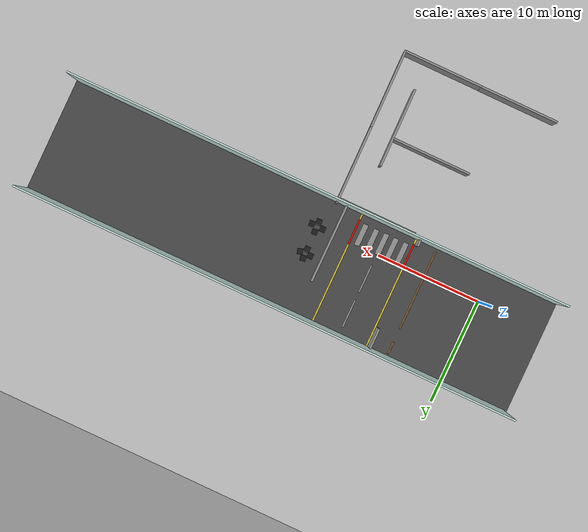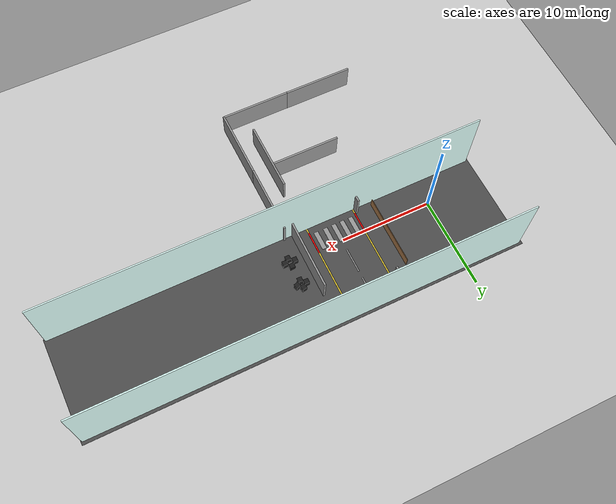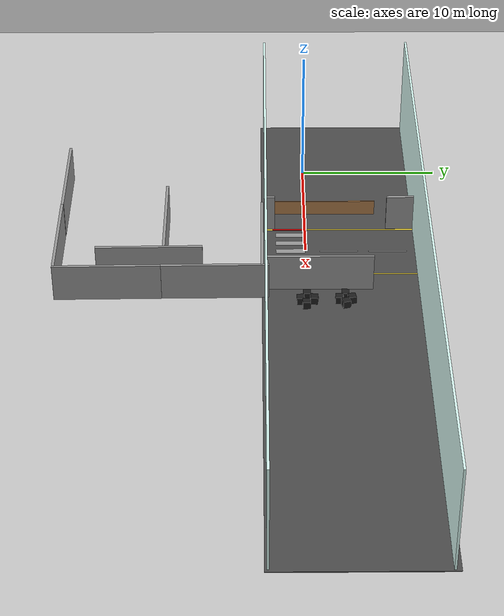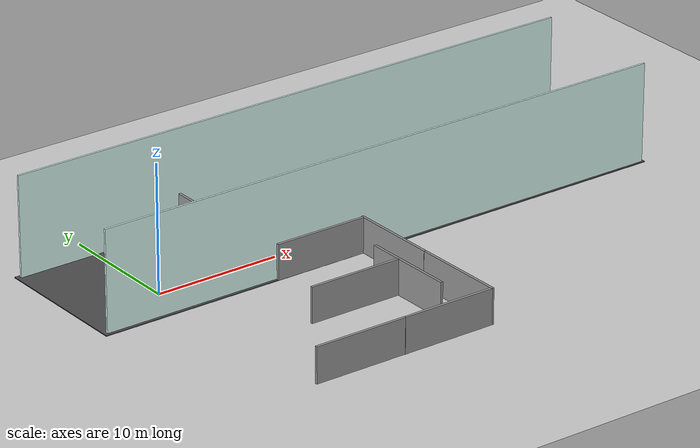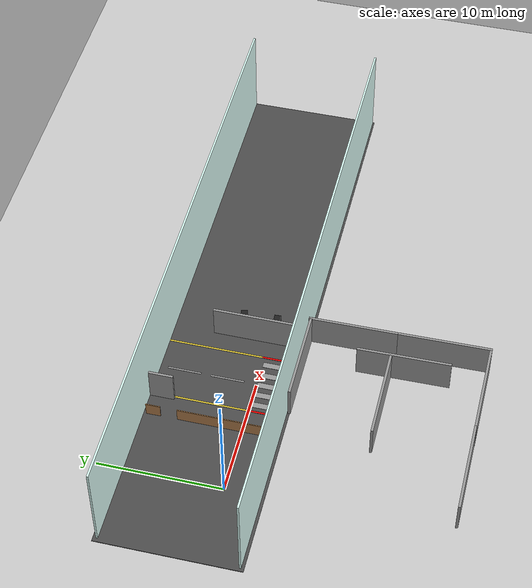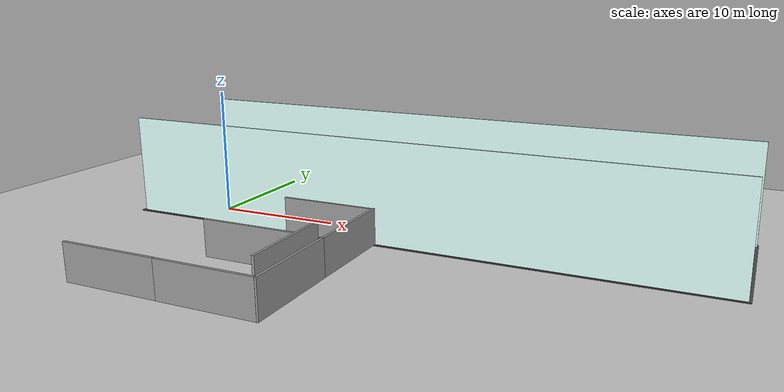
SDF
<sdf version="1.6">
 <world name="default">
  <model name="grey_wall_1">
   <static>1</static>
   <link name="link">
    <pose>0 0 1.4 0 -0 0</pose>
    <collision name="collision"><geometry><box><size>7.5 0.2 2.8</size></box></geometry></collision>
    <visual name="visual">
     <cast_shadows>0</cast_shadows>
     <geometry><box><size>7.5 0.2 2.8</size></box></geometry>
     <material>
      <script>
       <uri>model://grey_wall/materials/scripts</uri>
       <uri>model://grey_wall/materials/textures</uri>
       <name>vrc/grey_wall</name>
      </script>
     </material>
    </visual>
   </link>
   <pose>14.5585 0.893344 0 0 -0 1.56876</pose>
  </model>
  <model name="asphalt_plane_new">
   <link name="link">
    <inertial>
     <mass>1</mass>
     <inertia><ixx>1</ixx><ixy>0</ixy><ixz>0</ixz><iyy>1</iyy><iyz>0</iyz><izz>1</izz></inertia>
    </inertial>
    <visual name="visual">
     <cast_shadows>0</cast_shadows>
     <geometry><box><size>48.1726 11.4674 0.5486</size></box></geometry>
     <material>
      <script>
       <uri>model://asphalt_plane/materials/scripts</uri>
       <uri>model://asphalt_plane/materials/textures</uri>
       <name>vrc/asphalt</name>
      </script>
      <shader type="pixel"><normal_map>__default__</normal_map></shader>
      <ambient>0.5 0.5 0.5 1</ambient>
      <diffuse>0.5 0.5 0.5 1</diffuse>
      <specular>0.2 0.2 0.2 1</specular>
      <emissive>0 0 0 1</emissive>
     </material>
    </visual>
   </link>
   <static>1</static>
   <pose>17.4989 2.59063 -0.264849 0 -0 0.00191</pose>
  </model>
  <model name="grey_wall_clone_0">
   <link name="link">
    <pose>2.90621 0.028382 1.4 0 -0 0</pose>
    <inertial>
     <mass>1</mass>
     <inertia><ixx>1</ixx><ixy>0</ixy><ixz>0</ixz><iyy>1</iyy><iyz>0</iyz><izz>1</izz></inertia>
    </inertial>
    <visual name="visual">
     <cast_shadows>0</cast_shadows>
     <geometry><box><size>2 0.2 2.8</size></box></geometry>
     <material>
      <script>
       <uri>model://grey_wall/materials/scripts</uri>
       <uri>model://grey_wall/materials/textures</uri>
       <name>vrc/grey_wall</name>
      </script>
      <shader type="pixel"><normal_map>__default__</normal_map></shader>
      <ambient>1 1 1 1</ambient>
      <diffuse>1 1 1 1</diffuse>
      <specular>0 0 0 1</specular>
      <emissive>0 0 0 1</emissive>
     </material>
    </visual>
    <collision name="collision">
     <geometry><box><size>2 0.2 2.8</size></box></geometry>
     <surface>
      <friction>
       <ode><mu>1</mu><mu2>1</mu2><fdir1>0 0 0</fdir1><slip1>0</slip1><slip2>0</slip2></ode>
       <torsional>
        <coefficient>1</coefficient>
        <patch_radius>0</patch_radius>
        <surface_radius>0</surface_radius>
        <use_patch_radius>1</use_patch_radius>
        <ode><slip>0</slip></ode>
       </torsional>
      </friction>
      <bounce><restitution_coefficient>0</restitution_coefficient><threshold>1e+06</threshold></bounce>
      <contact>
       <collide_without_contact>0</collide_without_contact>
       <collide_without_contact_bitmask>1</collide_without_contact_bitmask>
       <collide_bitmask>1</collide_bitmask>
       <ode>
        <soft_cfm>0</soft_cfm>
        <soft_erp>0.2</soft_erp>
        <kp>1e+13</kp>
        <kd>1</kd>
        <max_vel>0.01</max_vel>
        <min_depth>0</min_depth>
       </ode>
       <bullet>
        <split_impulse>1</split_impulse>
        <split_impulse_penetration_threshold>-0.01</split_impulse_penetration_threshold>
        <soft_cfm>0</soft_cfm>
        <soft_erp>0.2</soft_erp>
        <kp>1e+13</kp>
        <kd>1</kd>
       </bullet>
      </contact>
     </surface>
    </collision>
   </link>
   <static>1</static>
   <pose>7.26761 9.82843 0 0 0 -1.57</pose>
  </model>
  <model name="grey_wall_clone_0_clone_1">
   <link name="link">
    <pose>0 0 1.4 0 -0 0</pose>
    <inertial>
     <mass>1</mass>
     <inertia><ixx>1</ixx><ixy>0</ixy><ixz>0</ixz><iyy>1</iyy><iyz>0</iyz><izz>1</izz></inertia>
    </inertial>
    <visual name="visual">
     <cast_shadows>0</cast_shadows>
     <geometry><box><size>0.75 0.2 2.8</size></box></geometry>
     <material>
      <script>
       <uri>model://grey_wall/materials/scripts</uri>
       <uri>model://grey_wall/materials/textures</uri>
       <name>vrc/grey_wall</name>
      </script>
      <shader type="pixel"><normal_map>__default__</normal_map></shader>
      <ambient>1 1 1 1</ambient>
      <diffuse>1 1 1 1</diffuse>
      <specular>0 0 0 1</specular>
      <emissive>0 0 0 1</emissive>
     </material>
    </visual>
    <collision name="collision">
     <geometry><box><size>0.75 0.2 2.8</size></box></geometry>
     <surface>
      <friction>
       <ode><mu>1</mu><mu2>1</mu2><fdir1>0 0 0</fdir1><slip1>0</slip1><slip2>0</slip2></ode>
       <torsional>
        <coefficient>1</coefficient>
        <patch_radius>0</patch_radius>
        <surface_radius>0</surface_radius>
        <use_patch_radius>1</use_patch_radius>
        <ode><slip>0</slip></ode>
       </torsional>
      </friction>
      <bounce><restitution_coefficient>0</restitution_coefficient><threshold>1e+06</threshold></bounce>
      <contact>
       <collide_without_contact>0</collide_without_contact>
       <collide_without_contact_bitmask>1</collide_without_contact_bitmask>
       <collide_bitmask>1</collide_bitmask>
       <ode>
        <soft_cfm>0</soft_cfm>
        <soft_erp>0.2</soft_erp>
        <kp>1e+13</kp>
        <kd>1</kd>
        <max_vel>0.01</max_vel>
        <min_depth>0</min_depth>
       </ode>
       <bullet>
        <split_impulse>1</split_impulse>
        <split_impulse_penetration_threshold>-0.01</split_impulse_penetration_threshold>
        <soft_cfm>0</soft_cfm>
        <soft_erp>0.2</soft_erp>
        <kp>1e+13</kp>
        <kd>1</kd>
       </bullet>
      </contact>
     </surface>
    </collision>
   </link>
   <static>1</static>
   <pose>7.30492 -2.5737 0 0 0 -1.54624</pose>
  </model>
  <model name="unit_box_0_clone_22_clone_15">
   <link name="link">
    <inertial>
     <mass>1</mass>
     <inertia>
      <ixx>0.166667</ixx>
      <ixy>0</ixy>
      <ixz>0</ixz>
      <iyy>0.166667</iyy>
      <iyz>0</iyz>
      <izz>0.166667</izz>
     </inertia>
    </inertial>
    <visual name="visual">
     <geometry><box><size>0.530101 0.530101 0.530101</size></box></geometry>
     <material>
      <script><name>Gazebo/FlatBlack</name><uri>file://media/materials/scripts/gazebo.material</uri></script>
      <shader type="pixel"><normal_map>__default__</normal_map></shader>
      <ambient>0.1 0.1 0.1 1</ambient>
      <diffuse>0.1 0.1 0.1 1</diffuse>
      <specular>0.01 0.01 0.01 1</specular>
      <emissive>0 0 0 1</emissive>
     </material>
    </visual>
    <collision name="collision">
     <geometry><box><size>0.530101 0.530101 0.530101</size></box></geometry>
     <surface>
      <friction>
       <ode><mu>1</mu><mu2>1</mu2><fdir1>0 0 0</fdir1><slip1>0</slip1><slip2>0</slip2></ode>
       <torsional>
        <coefficient>1</coefficient>
        <patch_radius>0</patch_radius>
        <surface_radius>0</surface_radius>
        <use_patch_radius>1</use_patch_radius>
        <ode><slip>0</slip></ode>
       </torsional>
      </friction>
      <bounce><restitution_coefficient>0</restitution_coefficient><threshold>1e+06</threshold></bounce>
      <contact>
       <collide_without_contact>0</collide_without_contact>
       <collide_without_contact_bitmask>1</collide_without_contact_bitmask>
       <collide_bitmask>1</collide_bitmask>
       <ode>
        <soft_cfm>0</soft_cfm>
        <soft_erp>0.2</soft_erp>
        <kp>1e+13</kp>
        <kd>1</kd>
        <max_vel>0.01</max_vel>
        <min_depth>0</min_depth>
       </ode>
       <bullet>
        <split_impulse>1</split_impulse>
        <split_impulse_penetration_threshold>-0.01</split_impulse_penetration_threshold>
        <soft_cfm>0</soft_cfm>
        <soft_erp>0.2</soft_erp>
        <kp>1e+13</kp>
        <kd>1</kd>
       </bullet>
      </contact>
     </surface>
    </collision>
   </link>
   <static>0</static>
   <pose>16.1133 2.22965 0.29182 1.67037 0.006566 -0.065671</pose>
  </model>
  <model name="unit_box_0_clone_22_clone_15_clone">
   <link name="link">
    <inertial>
     <mass>1</mass>
     <inertia>
      <ixx>0.166667</ixx>
      <ixy>0</ixy>
      <ixz>0</ixz>
      <iyy>0.166667</iyy>
      <iyz>0</iyz>
      <izz>0.166667</izz>
     </inertia>
    </inertial>
    <visual name="visual">
     <geometry><box><size>0.530101 0.530101 0.530101</size></box></geometry>
     <material>
      <script><name>Gazebo/FlatBlack</name><uri>file://media/materials/scripts/gazebo.material</uri></script>
      <shader type="pixel"><normal_map>__default__</normal_map></shader>
      <ambient>0.1 0.1 0.1 1</ambient>
      <diffuse>0.1 0.1 0.1 1</diffuse>
      <specular>0.01 0.01 0.01 1</specular>
      <emissive>0 0 0 1</emissive>
     </material>
    </visual>
    <collision name="collision">
     <geometry><box><size>0.530101 0.530101 0.530101</size></box></geometry>
     <surface>
      <friction>
       <ode><mu>1</mu><mu2>1</mu2><fdir1>0 0 0</fdir1><slip1>0</slip1><slip2>0</slip2></ode>
       <torsional>
        <coefficient>1</coefficient>
        <patch_radius>0</patch_radius>
        <surface_radius>0</surface_radius>
        <use_patch_radius>1</use_patch_radius>
        <ode><slip>0</slip></ode>
       </torsional>
      </friction>
      <bounce><restitution_coefficient>0</restitution_coefficient><threshold>1e+06</threshold></bounce>
      <contact>
       <collide_without_contact>0</collide_without_contact>
       <collide_without_contact_bitmask>1</collide_without_contact_bitmask>
       <collide_bitmask>1</collide_bitmask>
       <ode>
        <soft_cfm>0</soft_cfm>
        <soft_erp>0.2</soft_erp>
        <kp>1e+13</kp>
        <kd>1</kd>
        <max_vel>0.01</max_vel>
        <min_depth>0</min_depth>
       </ode>
       <bullet>
        <split_impulse>1</split_impulse>
        <split_impulse_penetration_threshold>-0.01</split_impulse_penetration_threshold>
        <soft_cfm>0</soft_cfm>
        <soft_erp>0.2</soft_erp>
        <kp>1e+13</kp>
        <kd>1</kd>
       </bullet>
      </contact>
     </surface>
    </collision>
   </link>
   <static>0</static>
   <pose>16.6207 2.65895 0.311068 -0.00533 -0.017542 0.297121</pose>
  </model>
  <model name="unit_box_0_clone_22_clone_15_clone_0">
   <link name="link">
    <inertial>
     <mass>1</mass>
     <inertia>
      <ixx>0.166667</ixx>
      <ixy>0</ixy>
      <ixz>0</ixz>
      <iyy>0.166667</iyy>
      <iyz>0</iyz>
      <izz>0.166667</izz>
     </inertia>
    </inertial>
    <visual name="visual">
     <geometry><box><size>0.530101 0.530101 0.530101</size></box></geometry>
     <material>
      <script><name>Gazebo/FlatBlack</name><uri>file://media/materials/scripts/gazebo.material</uri></script>
      <shader type="pixel"><normal_map>__default__</normal_map></shader>
      <ambient>0.1 0.1 0.1 1</ambient>
      <diffuse>0.1 0.1 0.1 1</diffuse>
      <specular>0.01 0.01 0.01 1</specular>
      <emissive>0 0 0 1</emissive>
     </material>
    </visual>
    <collision name="collision">
     <geometry><box><size>0.530101 0.530101 0.530101</size></box></geometry>
     <surface>
      <friction>
       <ode><mu>1</mu><mu2>1</mu2><fdir1>0 0 0</fdir1><slip1>0</slip1><slip2>0</slip2></ode>
       <torsional>
        <coefficient>1</coefficient>
        <patch_radius>0</patch_radius>
        <surface_radius>0</surface_radius>
        <use_patch_radius>1</use_patch_radius>
        <ode><slip>0</slip></ode>
       </torsional>
      </friction>
      <bounce><restitution_coefficient>0</restitution_coefficient><threshold>1e+06</threshold></bounce>
      <contact>
       <collide_without_contact>0</collide_without_contact>
       <collide_without_contact_bitmask>1</collide_without_contact_bitmask>
       <collide_bitmask>1</collide_bitmask>
       <ode>
        <soft_cfm>0</soft_cfm>
        <soft_erp>0.2</soft_erp>
        <kp>1e+13</kp>
        <kd>1</kd>
        <max_vel>0.01</max_vel>
        <min_depth>0</min_depth>
       </ode>
       <bullet>
        <split_impulse>1</split_impulse>
        <split_impulse_penetration_threshold>-0.01</split_impulse_penetration_threshold>
        <soft_cfm>0</soft_cfm>
        <soft_erp>0.2</soft_erp>
        <kp>1e+13</kp>
        <kd>1</kd>
       </bullet>
      </contact>
     </surface>
    </collision>
   </link>
   <static>0</static>
   <pose>16.1182 3.10123 0.310739 0.018651 -0.003005 0.159955</pose>
  </model>
  <model name="unit_box_0_clone_22_clone_15_clone_1">
   <link name="link">
    <inertial>
     <mass>1</mass>
     <inertia>
      <ixx>0.166667</ixx>
      <ixy>0</ixy>
      <ixz>0</ixz>
      <iyy>0.166667</iyy>
      <iyz>0</iyz>
      <izz>0.166667</izz>
     </inertia>
    </inertial>
    <visual name="visual">
     <geometry><box><size>0.530101 0.530101 0.530101</size></box></geometry>
     <material>
      <script><name>Gazebo/FlatBlack</name><uri>file://media/materials/scripts/gazebo.material</uri></script>
      <shader type="pixel"><normal_map>__default__</normal_map></shader>
      <ambient>0.1 0.1 0.1 1</ambient>
      <diffuse>0.1 0.1 0.1 1</diffuse>
      <specular>0.01 0.01 0.01 1</specular>
      <emissive>0 0 0 1</emissive>
     </material>
    </visual>
    <collision name="collision">
     <geometry><box><size>0.530101 0.530101 0.530101</size></box></geometry>
     <surface>
      <friction>
       <ode><mu>1</mu><mu2>1</mu2><fdir1>0 0 0</fdir1><slip1>0</slip1><slip2>0</slip2></ode>
       <torsional>
        <coefficient>1</coefficient>
        <patch_radius>0</patch_radius>
        <surface_radius>0</surface_radius>
        <use_patch_radius>1</use_patch_radius>
        <ode><slip>0</slip></ode>
       </torsional>
      </friction>
      <bounce><restitution_coefficient>0</restitution_coefficient><threshold>1e+06</threshold></bounce>
      <contact>
       <collide_without_contact>0</collide_without_contact>
       <collide_without_contact_bitmask>1</collide_without_contact_bitmask>
       <collide_bitmask>1</collide_bitmask>
       <ode>
        <soft_cfm>0</soft_cfm>
        <soft_erp>0.2</soft_erp>
        <kp>1e+13</kp>
        <kd>1</kd>
        <max_vel>0.01</max_vel>
        <min_depth>0</min_depth>
       </ode>
       <bullet>
        <split_impulse>1</split_impulse>
        <split_impulse_penetration_threshold>-0.01</split_impulse_penetration_threshold>
        <soft_cfm>0</soft_cfm>
        <soft_erp>0.2</soft_erp>
        <kp>1e+13</kp>
        <kd>1</kd>
       </bullet>
      </contact>
     </surface>
    </collision>
   </link>
   <static>0</static>
   <pose>15.5988 2.64468 0.26505 0 0 -0.039555</pose>
  </model>
  <model name="unit_box_0_clone_22_clone_15_clone_2">
   <link name="link">
    <inertial>
     <mass>1</mass>
     <inertia>
      <ixx>0.166667</ixx>
      <ixy>0</ixy>
      <ixz>0</ixz>
      <iyy>0.166667</iyy>
      <iyz>0</iyz>
      <izz>0.166667</izz>
     </inertia>
    </inertial>
    <visual name="visual">
     <geometry><box><size>0.530101 0.530101 0.530101</size></box></geometry>
     <material>
      <script><name>Gazebo/FlatBlack</name><uri>file://media/materials/scripts/gazebo.material</uri></script>
      <shader type="pixel"><normal_map>__default__</normal_map></shader>
      <ambient>0.1 0.1 0.1 1</ambient>
      <diffuse>0.1 0.1 0.1 1</diffuse>
      <specular>0.01 0.01 0.01 1</specular>
      <emissive>0 0 0 1</emissive>
     </material>
    </visual>
    <collision name="collision">
     <geometry><box><size>0.530101 0.530101 0.530101</size></box></geometry>
     <surface>
      <friction>
       <ode><mu>1</mu><mu2>1</mu2><fdir1>0 0 0</fdir1><slip1>0</slip1><slip2>0</slip2></ode>
       <torsional>
        <coefficient>1</coefficient>
        <patch_radius>0</patch_radius>
        <surface_radius>0</surface_radius>
        <use_patch_radius>1</use_patch_radius>
        <ode><slip>0</slip></ode>
       </torsional>
      </friction>
      <bounce><restitution_coefficient>0</restitution_coefficient><threshold>1e+06</threshold></bounce>
      <contact>
       <collide_without_contact>0</collide_without_contact>
       <collide_without_contact_bitmask>1</collide_without_contact_bitmask>
       <collide_bitmask>1</collide_bitmask>
       <ode>
        <soft_cfm>0</soft_cfm>
        <soft_erp>0.2</soft_erp>
        <kp>1e+13</kp>
        <kd>1</kd>
        <max_vel>0.01</max_vel>
        <min_depth>0</min_depth>
       </ode>
       <bullet>
        <split_impulse>1</split_impulse>
        <split_impulse_penetration_threshold>-0.01</split_impulse_penetration_threshold>
        <soft_cfm>0</soft_cfm>
        <soft_erp>0.2</soft_erp>
        <kp>1e+13</kp>
        <kd>1</kd>
       </bullet>
      </contact>
     </surface>
    </collision>
   </link>
   <static>0</static>
   <pose>16.7106 -0.073486 0.312043 -0.001335 -0.025383 0.054704</pose>
  </model>
  <model name="unit_box_0_clone_22_clone_15_clone_3">
   <link name="link">
    <inertial>
     <mass>1</mass>
     <inertia>
      <ixx>0.166667</ixx>
      <ixy>0</ixy>
      <ixz>0</ixz>
      <iyy>0.166667</iyy>
      <iyz>0</iyz>
      <izz>0.166667</izz>
     </inertia>
    </inertial>
    <visual name="visual">
     <geometry><box><size>0.530101 0.530101 0.530101</size></box></geometry>
     <material>
      <script><name>Gazebo/FlatBlack</name><uri>file://media/materials/scripts/gazebo.material</uri></script>
      <shader type="pixel"><normal_map>__default__</normal_map></shader>
      <ambient>0.1 0.1 0.1 1</ambient>
      <diffuse>0.1 0.1 0.1 1</diffuse>
      <specular>0.01 0.01 0.01 1</specular>
      <emissive>0 0 0 1</emissive>
     </material>
    </visual>
    <collision name="collision">
     <geometry><box><size>0.530101 0.530101 0.530101</size></box></geometry>
     <surface>
      <friction>
       <ode><mu>1</mu><mu2>1</mu2><fdir1>0 0 0</fdir1><slip1>0</slip1><slip2>0</slip2></ode>
       <torsional>
        <coefficient>1</coefficient>
        <patch_radius>0</patch_radius>
        <surface_radius>0</surface_radius>
        <use_patch_radius>1</use_patch_radius>
        <ode><slip>0</slip></ode>
       </torsional>
      </friction>
      <bounce><restitution_coefficient>0</restitution_coefficient><threshold>1e+06</threshold></bounce>
      <contact>
       <collide_without_contact>0</collide_without_contact>
       <collide_without_contact_bitmask>1</collide_without_contact_bitmask>
       <collide_bitmask>1</collide_bitmask>
       <ode>
        <soft_cfm>0</soft_cfm>
        <soft_erp>0.2</soft_erp>
        <kp>1e+13</kp>
        <kd>1</kd>
        <max_vel>0.01</max_vel>
        <min_depth>0</min_depth>
       </ode>
       <bullet>
        <split_impulse>1</split_impulse>
        <split_impulse_penetration_threshold>-0.01</split_impulse_penetration_threshold>
        <soft_cfm>0</soft_cfm>
        <soft_erp>0.2</soft_erp>
        <kp>1e+13</kp>
        <kd>1</kd>
       </bullet>
      </contact>
     </surface>
    </collision>
   </link>
   <static>0</static>
   <pose>16.1586 0.462274 0.292056 -0.106824 0.000966 0.009061</pose>
  </model>
  <model name="unit_box_0_clone_22_clone_15_clone_4">
   <link name="link">
    <inertial>
     <mass>1</mass>
     <inertia>
      <ixx>0.166667</ixx>
      <ixy>0</ixy>
      <ixz>0</ixz>
      <iyy>0.166667</iyy>
      <iyz>0</iyz>
      <izz>0.166667</izz>
     </inertia>
    </inertial>
    <visual name="visual">
     <geometry><box><size>0.530101 0.530101 0.530101</size></box></geometry>
     <material>
      <script><name>Gazebo/FlatBlack</name><uri>file://media/materials/scripts/gazebo.material</uri></script>
      <shader type="pixel"><normal_map>__default__</normal_map></shader>
      <ambient>0.1 0.1 0.1 1</ambient>
      <diffuse>0.1 0.1 0.1 1</diffuse>
      <specular>0.01 0.01 0.01 1</specular>
      <emissive>0 0 0 1</emissive>
     </material>
    </visual>
    <collision name="collision">
     <geometry><box><size>0.530101 0.530101 0.530101</size></box></geometry>
     <surface>
      <friction>
       <ode><mu>1</mu><mu2>1</mu2><fdir1>0 0 0</fdir1><slip1>0</slip1><slip2>0</slip2></ode>
       <torsional>
        <coefficient>1</coefficient>
        <patch_radius>0</patch_radius>
        <surface_radius>0</surface_radius>
        <use_patch_radius>1</use_patch_radius>
        <ode><slip>0</slip></ode>
       </torsional>
      </friction>
      <bounce><restitution_coefficient>0</restitution_coefficient><threshold>1e+06</threshold></bounce>
      <contact>
       <collide_without_contact>0</collide_without_contact>
       <collide_without_contact_bitmask>1</collide_without_contact_bitmask>
       <collide_bitmask>1</collide_bitmask>
       <ode>
        <soft_cfm>0</soft_cfm>
        <soft_erp>0.2</soft_erp>
        <kp>1e+13</kp>
        <kd>1</kd>
        <max_vel>0.01</max_vel>
        <min_depth>0</min_depth>
       </ode>
       <bullet>
        <split_impulse>1</split_impulse>
        <split_impulse_penetration_threshold>-0.01</split_impulse_penetration_threshold>
        <soft_cfm>0</soft_cfm>
        <soft_erp>0.2</soft_erp>
        <kp>1e+13</kp>
        <kd>1</kd>
       </bullet>
      </contact>
     </surface>
    </collision>
   </link>
   <static>0</static>
   <pose>15.6129 -0.03298 0.26505 0 0 -0.001363</pose>
  </model>
  <model name="unit_box_0_clone_22_clone_15_clone_5">
   <link name="link">
    <inertial>
     <mass>1</mass>
     <inertia>
      <ixx>0.166667</ixx>
      <ixy>0</ixy>
      <ixz>0</ixz>
      <iyy>0.166667</iyy>
      <iyz>0</iyz>
      <izz>0.166667</izz>
     </inertia>
    </inertial>
    <visual name="visual">
     <geometry><box><size>0.530101 0.530101 0.530101</size></box></geometry>
     <material>
      <script><name>Gazebo/FlatBlack</name><uri>file://media/materials/scripts/gazebo.material</uri></script>
      <shader type="pixel"><normal_map>__default__</normal_map></shader>
      <ambient>0.1 0.1 0.1 1</ambient>
      <diffuse>0.1 0.1 0.1 1</diffuse>
      <specular>0.01 0.01 0.01 1</specular>
      <emissive>0 0 0 1</emissive>
     </material>
    </visual>
    <collision name="collision">
     <geometry><box><size>0.530101 0.530101 0.530101</size></box></geometry>
     <surface>
      <friction>
       <ode><mu>1</mu><mu2>1</mu2><fdir1>0 0 0</fdir1><slip1>0</slip1><slip2>0</slip2></ode>
       <torsional>
        <coefficient>1</coefficient>
        <patch_radius>0</patch_radius>
        <surface_radius>0</surface_radius>
        <use_patch_radius>1</use_patch_radius>
        <ode><slip>0</slip></ode>
       </torsional>
      </friction>
      <bounce><restitution_coefficient>0</restitution_coefficient><threshold>1e+06</threshold></bounce>
      <contact>
       <collide_without_contact>0</collide_without_contact>
       <collide_without_contact_bitmask>1</collide_without_contact_bitmask>
       <collide_bitmask>1</collide_bitmask>
       <ode>
        <soft_cfm>0</soft_cfm>
        <soft_erp>0.2</soft_erp>
        <kp>1e+13</kp>
        <kd>1</kd>
        <max_vel>0.01</max_vel>
        <min_depth>0</min_depth>
       </ode>
       <bullet>
        <split_impulse>1</split_impulse>
        <split_impulse_penetration_threshold>-0.01</split_impulse_penetration_threshold>
        <soft_cfm>0</soft_cfm>
        <soft_erp>0.2</soft_erp>
        <kp>1e+13</kp>
        <kd>1</kd>
       </bullet>
      </contact>
     </surface>
    </collision>
   </link>
   <static>0</static>
   <pose>16.1875 -0.465476 0.286625 1.6538 -0.001928 0.023173</pose>
  </model>
  <model name="road_marks">
   <link name="Wall_63">
    <pose>2.6855 -0.180493 0.00816 0 0 -1.5708</pose>
    <inertial>
     <inertia><ixx>0</ixx><ixy>0</ixy><ixz>0</ixz><iyy>0</iyy><iyz>0</iyz><izz>0</izz></inertia>
     <mass>0</mass>
    </inertial>
    <visual name="Wall_63_Visual">
     <pose>0 0 1.25 0 -0 0</pose>
     <geometry><box><size>10.85 0.15 0.05</size></box></geometry>
     <material>
      <script><uri>file://media/materials/scripts/gazebo.material</uri><name>Gazebo/ZincYellow</name></script>
      <ambient>1 1 1 1</ambient>
      <shader type="pixel"><normal_map>__default__</normal_map></shader>
      <diffuse>0.7 0.7 0.7 1</diffuse>
      <specular>0.01 0.01 0.01 1</specular>
      <emissive>0 0 0 1</emissive>
     </material>
     <meta><layer>0</layer></meta>
    </visual>
   </link>
   <link name="Wall_68">
    <pose>-2.72228 -0.223638 0.00816 0 0 -1.5708</pose>
    <inertial>
     <mass>1</mass>
     <inertia><ixx>1</ixx><ixy>0</ixy><ixz>0</ixz><iyy>1</iyy><iyz>0</iyz><izz>1</izz></inertia>
    </inertial>
    <visual name="Wall_68_Visual">
     <pose>0 0 1.25 0 -0 0</pose>
     <geometry><box><size>10.85 0.15 0.05</size></box></geometry>
     <material>
      <script><uri>file://media/materials/scripts/gazebo.material</uri><name>Gazebo/ZincYellow</name></script>
      <ambient>1 1 1 1</ambient>
      <shader type="pixel"><normal_map>__default__</normal_map></shader>
      <diffuse>0.7 0.7 0.7 1</diffuse>
      <specular>0.01 0.01 0.01 1</specular>
      <emissive>0 0 0 1</emissive>
     </material>
     <meta><layer>0</layer></meta>
    </visual>
   </link>
   <link name="Wall_70">
    <pose>-0.025427 3.13042 0.00816 0 0 -1.5708</pose>
    <inertial>
     <mass>1</mass>
     <inertia><ixx>1</ixx><ixy>0</ixy><ixz>0</ixz><iyy>1</iyy><iyz>0</iyz><izz>1</izz></inertia>
    </inertial>
    <visual name="Wall_70_Visual">
     <pose>0 0 1.25 0 -0 0</pose>
     <geometry><box><size>2.75 0.15 0.05</size></box></geometry>
     <material>
      <script><uri>file://media/materials/scripts/gazebo.material</uri><name>Gazebo/Grey</name></script>
      <ambient>1 1 1 1</ambient>
      <shader type="pixel"><normal_map>__default__</normal_map></shader>
      <diffuse>0.7 0.7 0.7 1</diffuse>
      <specular>0.01 0.01 0.01 1</specular>
      <emissive>0 0 0 1</emissive>
     </material>
     <meta><layer>0</layer></meta>
    </visual>
   </link>
   <link name="Wall_72">
    <pose>-0.041656 -0.398325 0.00816 0 0 -1.5708</pose>
    <inertial>
     <mass>1</mass>
     <inertia><ixx>1</ixx><ixy>0</ixy><ixz>0</ixz><iyy>1</iyy><iyz>0</iyz><izz>1</izz></inertia>
    </inertial>
    <visual name="Wall_72_Visual">
     <pose>0 0 1.25 0 -0 0</pose>
     <geometry><box><size>2.75 0.15 0.05</size></box></geometry>
     <material>
      <script><uri>file://media/materials/scripts/gazebo.material</uri><name>Gazebo/Grey</name></script>
      <ambient>1 1 1 1</ambient>
      <shader type="pixel"><normal_map>__default__</normal_map></shader>
      <diffuse>0.7 0.7 0.7 1</diffuse>
      <specular>0.01 0.01 0.01 1</specular>
      <emissive>0 0 0 1</emissive>
     </material>
     <meta><layer>0</layer></meta>
    </visual>
   </link>
   <link name="link_0">
    <inertial>
     <mass>1</mass>
     <inertia>
      <ixx>0.166667</ixx>
      <ixy>0</ixy>
      <ixz>0</ixz>
      <iyy>0.166667</iyy>
      <iyz>0</iyz>
      <izz>0.166667</izz>
     </inertia>
    </inertial>
    <pose>-2.75125 -3.91658 1.77945 0 -0 0</pose>
    <visual name="visual">
     <pose>0 0 -0.53 0 -0 0</pose>
     <geometry><box><size>0.2 2 0.03</size></box></geometry>
     <material>
      <lighting>1</lighting>
      <script><uri>file://media/materials/scripts/gazebo.material</uri><name>Gazebo/Red</name></script>
      <shader type="pixel"><normal_map>__default__</normal_map></shader>
      <ambient>0.3 0.3 0.3 1</ambient>
      <diffuse>0.7 0.7 0.7 1</diffuse>
      <specular>0.01 0.01 0.01 1</specular>
      <emissive>0 0 0 1</emissive>
     </material>
    </visual>
   </link>
   <link name="link_0_clone">
    <inertial>
     <mass>1</mass>
     <inertia>
      <ixx>0.166667</ixx>
      <ixy>0</ixy>
      <ixz>0</ixz>
      <iyy>0.166667</iyy>
      <iyz>0</iyz>
      <izz>0.166667</izz>
     </inertia>
    </inertial>
    <pose>2.68914 -4.13721 1.77945 0 -0 0</pose>
    <visual name="visual">
     <pose>0 0 -0.53 0 -0 0</pose>
     <geometry><box><size>0.2 2 0.03</size></box></geometry>
     <material>
      <lighting>1</lighting>
      <script><uri>file://media/materials/scripts/gazebo.material</uri><name>Gazebo/Red</name></script>
      <shader type="pixel"><normal_map>__default__</normal_map></shader>
      <ambient>0.3 0.3 0.3 1</ambient>
      <diffuse>0.7 0.7 0.7 1</diffuse>
      <specular>0.01 0.01 0.01 1</specular>
      <emissive>0 0 0 1</emissive>
     </material>
    </visual>
   </link>
   <static>1</static>
   <pose>10.2071 2.79317 -1.27065 0 -0 0</pose>
  </model>
  <model name="world_frame">
   <link name="Wall_101">
    <pose>-12.1146 -1.193 -0.100255 0 -0 1.5708</pose>
    <visual name="Wall_101_Visual">
     <pose>0 0 0.625 0 -0 0</pose>
     <geometry><box><size>7.6704 0.07 1.25</size></box></geometry>
     <material>
      <script><uri>file://media/materials/scripts/gazebo.material</uri><name>Gazebo/Wood</name></script>
      <ambient>1 1 1 1</ambient>
      <shader type="pixel"/>
      <diffuse>1 1 1 1</diffuse>
      <specular>0.2 0.2 0.2 1</specular>
      <emissive>0 0 0 1</emissive>
     </material>
     <meta><layer>0</layer></meta>
    </visual>
    <collision name="Wall_101_Collision">
     <pose>0 0 0.625 0 -0 0</pose>
     <geometry><box><size>7.6704 0.07 1.25</size></box></geometry>
     <surface>
      <friction>
       <ode><mu>1</mu><mu2>1</mu2><fdir1>0 0 0</fdir1><slip1>0</slip1><slip2>0</slip2></ode>
       <torsional>
        <coefficient>1</coefficient>
        <patch_radius>0</patch_radius>
        <surface_radius>0</surface_radius>
        <use_patch_radius>1</use_patch_radius>
        <ode><slip>0</slip></ode>
       </torsional>
      </friction>
      <bounce><restitution_coefficient>0</restitution_coefficient><threshold>1e+06</threshold></bounce>
      <contact>
       <collide_without_contact>0</collide_without_contact>
       <collide_without_contact_bitmask>1</collide_without_contact_bitmask>
       <collide_bitmask>1</collide_bitmask>
       <ode>
        <soft_cfm>0</soft_cfm>
        <soft_erp>0.2</soft_erp>
        <kp>1e+13</kp>
        <kd>1</kd>
        <max_vel>0.01</max_vel>
        <min_depth>0</min_depth>
       </ode>
       <bullet>
        <split_impulse>1</split_impulse>
        <split_impulse_penetration_threshold>-0.01</split_impulse_penetration_threshold>
        <soft_cfm>0</soft_cfm>
        <soft_erp>0.2</soft_erp>
        <kp>1e+13</kp>
        <kd>1</kd>
       </bullet>
      </contact>
     </surface>
    </collision>
   </link>
   <link name="Wall_210">
    <pose>-0.024075 -5.42699 -0.100255 0 -0 0</pose>
    <visual name="Wall_210_Visual">
     <pose>0 0 4 0 -0 0</pose>
     <geometry><box><size>47.75 0.15 8</size></box></geometry>
     <material>
      <script><uri>file://media/materials/scripts/gazebo.material</uri><name>Gazebo/Grey</name></script>
      <ambient>0.866667 1 0.972549 1</ambient>
      <shader type="pixel"/>
      <diffuse>0.7 0.7 0.7 1</diffuse>
      <specular>0.01 0.01 0.01 1</specular>
      <emissive>0 0 0 1</emissive>
     </material>
     <meta><layer>0</layer></meta>
    </visual>
    <collision name="Wall_210_Collision">
     <pose>0 0 4 0 -0 0</pose>
     <geometry><box><size>47.75 0.15 8</size></box></geometry>
     <surface>
      <friction>
       <ode><mu>1</mu><mu2>1</mu2><fdir1>0 0 0</fdir1><slip1>0</slip1><slip2>0</slip2></ode>
       <torsional>
        <coefficient>1</coefficient>
        <patch_radius>0</patch_radius>
        <surface_radius>0</surface_radius>
        <use_patch_radius>1</use_patch_radius>
        <ode><slip>0</slip></ode>
       </torsional>
      </friction>
      <bounce><restitution_coefficient>0</restitution_coefficient><threshold>1e+06</threshold></bounce>
      <contact>
       <collide_without_contact>0</collide_without_contact>
       <collide_without_contact_bitmask>1</collide_without_contact_bitmask>
       <collide_bitmask>1</collide_bitmask>
       <ode>
        <soft_cfm>0</soft_cfm>
        <soft_erp>0.2</soft_erp>
        <kp>1e+13</kp>
        <kd>1</kd>
        <max_vel>0.01</max_vel>
        <min_depth>0</min_depth>
       </ode>
       <bullet>
        <split_impulse>1</split_impulse>
        <split_impulse_penetration_threshold>-0.01</split_impulse_penetration_threshold>
        <soft_cfm>0</soft_cfm>
        <soft_erp>0.2</soft_erp>
        <kp>1e+13</kp>
        <kd>1</kd>
       </bullet>
      </contact>
     </surface>
    </collision>
   </link>
   <link name="Wall_212">
    <pose>0.020361 5.425 -0.100255 0 -0 3.14159</pose>
    <visual name="Wall_212_Visual">
     <pose>0 0 4 0 -0 0</pose>
     <geometry><box><size>47.75 0.15 8</size></box></geometry>
     <material>
      <script><uri>file://media/materials/scripts/gazebo.material</uri><name>Gazebo/Grey</name></script>
      <ambient>0.866667 1 0.972549 1</ambient>
      <shader type="pixel"/>
      <diffuse>0.7 0.7 0.7 1</diffuse>
      <specular>0.01 0.01 0.01 1</specular>
      <emissive>0 0 0 1</emissive>
     </material>
     <meta><layer>0</layer></meta>
    </visual>
    <collision name="Wall_212_Collision">
     <pose>0 0 4 0 -0 0</pose>
     <geometry><box><size>47.75 0.15 8</size></box></geometry>
     <surface>
      <friction>
       <ode><mu>1</mu><mu2>1</mu2><fdir1>0 0 0</fdir1><slip1>0</slip1><slip2>0</slip2></ode>
       <torsional>
        <coefficient>1</coefficient>
        <patch_radius>0</patch_radius>
        <surface_radius>0</surface_radius>
        <use_patch_radius>1</use_patch_radius>
        <ode><slip>0</slip></ode>
       </torsional>
      </friction>
      <bounce><restitution_coefficient>0</restitution_coefficient><threshold>1e+06</threshold></bounce>
      <contact>
       <collide_without_contact>0</collide_without_contact>
       <collide_without_contact_bitmask>1</collide_without_contact_bitmask>
       <collide_bitmask>1</collide_bitmask>
       <ode>
        <soft_cfm>0</soft_cfm>
        <soft_erp>0.2</soft_erp>
        <kp>1e+13</kp>
        <kd>1</kd>
        <max_vel>0.01</max_vel>
        <min_depth>0</min_depth>
       </ode>
       <bullet>
        <split_impulse>1</split_impulse>
        <split_impulse_penetration_threshold>-0.01</split_impulse_penetration_threshold>
        <soft_cfm>0</soft_cfm>
        <soft_erp>0.2</soft_erp>
        <kp>1e+13</kp>
        <kd>1</kd>
       </bullet>
      </contact>
     </surface>
    </collision>
   </link>
   <link name="Wall_215">
    <pose>-9.41025 -3.61132 -0.128225 0 -0 1.5708</pose>
    <inertial>
     <mass>1</mass>
     <inertia><ixx>1</ixx><ixy>0</ixy><ixz>0</ixz><iyy>1</iyy><iyz>0</iyz><izz>1</izz></inertia>
    </inertial>
    <visual name="Wall_215_Visual">
     <pose>0 0 0.119 0 -0 0</pose>
     <geometry><box><size>2.1 0.5 0.038</size></box></geometry>
     <material>
      <script><uri>file://media/materials/scripts/gazebo.material</uri><name>Gazebo/Grey</name></script>
      <ambient>1 1 1 1</ambient>
      <shader type="pixel"><normal_map>__default__</normal_map></shader>
      <diffuse>0.7 0.7 0.7 1</diffuse>
      <specular>0.01 0.01 0.01 1</specular>
      <emissive>0 0 0 1</emissive>
     </material>
     <meta><layer>0</layer></meta>
    </visual>
   </link>
   <link name="Wall_217">
    <pose>-7.44858 -3.614 -0.126957 0 0 -1.5708</pose>
    <inertial>
     <mass>1</mass>
     <inertia><ixx>1</ixx><ixy>0</ixy><ixz>0</ixz><iyy>1</iyy><iyz>0</iyz><izz>1</izz></inertia>
    </inertial>
    <visual name="Wall_217_Visual">
     <pose>0 0 0.119 0 -0 0</pose>
     <geometry><box><size>2.1 0.5 0.038</size></box></geometry>
     <material>
      <script><uri>file://media/materials/scripts/gazebo.material</uri><name>Gazebo/Grey</name></script>
      <ambient>1 1 1 1</ambient>
      <shader type="pixel"><normal_map>__default__</normal_map></shader>
      <diffuse>0.7 0.7 0.7 1</diffuse>
      <specular>0.01 0.01 0.01 1</specular>
      <emissive>0 0 0 1</emissive>
     </material>
     <meta><layer>0</layer></meta>
    </visual>
   </link>
   <link name="Wall_219">
    <pose>-8.41658 -3.61132 -0.120812 0 0 -1.5708</pose>
    <inertial>
     <mass>1</mass>
     <inertia><ixx>1</ixx><ixy>0</ixy><ixz>0</ixz><iyy>1</iyy><iyz>0</iyz><izz>1</izz></inertia>
    </inertial>
    <visual name="Wall_219_Visual">
     <pose>0 0 0.119 0 -0 0</pose>
     <geometry><box><size>2.1 0.5 0.038</size></box></geometry>
     <material>
      <script><uri>file://media/materials/scripts/gazebo.material</uri><name>Gazebo/Grey</name></script>
      <ambient>1 1 1 1</ambient>
      <shader type="pixel"><normal_map>__default__</normal_map></shader>
      <diffuse>0.7 0.7 0.7 1</diffuse>
      <specular>0.01 0.01 0.01 1</specular>
      <emissive>0 0 0 1</emissive>
     </material>
     <meta><layer>0</layer></meta>
    </visual>
   </link>
   <link name="Wall_221">
    <pose>-6.45844 -3.59362 -0.116158 0 0 -1.5708</pose>
    <inertial>
     <mass>1</mass>
     <inertia><ixx>1</ixx><ixy>0</ixy><ixz>0</ixz><iyy>1</iyy><iyz>0</iyz><izz>1</izz></inertia>
    </inertial>
    <visual name="Wall_221_Visual">
     <pose>0 0 0.119 0 -0 0</pose>
     <geometry><box><size>2.1 0.5 0.038</size></box></geometry>
     <material>
      <script><uri>file://media/materials/scripts/gazebo.material</uri><name>Gazebo/Grey</name></script>
      <ambient>1 1 1 1</ambient>
      <shader type="pixel"><normal_map>__default__</normal_map></shader>
      <diffuse>0.7 0.7 0.7 1</diffuse>
      <specular>0.01 0.01 0.01 1</specular>
      <emissive>0 0 0 1</emissive>
     </material>
     <meta><layer>0</layer></meta>
    </visual>
   </link>
   <link name="Wall_223">
    <pose>-5.39229 -3.58819 -0.12866 0 0 -1.5708</pose>
    <inertial>
     <mass>1</mass>
     <inertia><ixx>1</ixx><ixy>0</ixy><ixz>0</ixz><iyy>1</iyy><iyz>0</iyz><izz>1</izz></inertia>
    </inertial>
    <visual name="Wall_223_Visual">
     <pose>0 0 0.129 0 -0 0</pose>
     <geometry><box><size>2.1 0.5 0.038</size></box></geometry>
     <material>
      <script><uri>file://media/materials/scripts/gazebo.material</uri><name>Gazebo/Grey</name></script>
      <ambient>1 1 1 1</ambient>
      <shader type="pixel"><normal_map>__default__</normal_map></shader>
      <diffuse>0.7 0.7 0.7 1</diffuse>
      <specular>0.01 0.01 0.01 1</specular>
      <emissive>0 0 0 1</emissive>
     </material>
     <meta><layer>0</layer></meta>
    </visual>
   </link>
   <link name="Wall_91">
    <pose>-12.1146 4.557 -0.100255 0 0 -1.5708</pose>
    <visual name="Wall_91_Visual">
     <pose>0 0 0.625 0 -0 0</pose>
     <geometry><box><size>1.16959 0.07 1.25</size></box></geometry>
     <material>
      <script><uri>file://media/materials/scripts/gazebo.material</uri><name>Gazebo/Wood</name></script>
      <ambient>1 1 1 1</ambient>
      <shader type="pixel"/>
      <diffuse>1 1 1 1</diffuse>
      <specular>0.2 0.2 0.2 1</specular>
      <emissive>0 0 0 1</emissive>
     </material>
     <meta><layer>0</layer></meta>
    </visual>
    <collision name="Wall_91_Collision">
     <pose>0 0 0.625 0 -0 0</pose>
     <geometry><box><size>1.16959 0.07 1.25</size></box></geometry>
     <surface>
      <friction>
       <ode><mu>1</mu><mu2>1</mu2><fdir1>0 0 0</fdir1><slip1>0</slip1><slip2>0</slip2></ode>
       <torsional>
        <coefficient>1</coefficient>
        <patch_radius>0</patch_radius>
        <surface_radius>0</surface_radius>
        <use_patch_radius>1</use_patch_radius>
        <ode><slip>0</slip></ode>
       </torsional>
      </friction>
      <bounce><restitution_coefficient>0</restitution_coefficient><threshold>1e+06</threshold></bounce>
      <contact>
       <collide_without_contact>0</collide_without_contact>
       <collide_without_contact_bitmask>1</collide_without_contact_bitmask>
       <collide_bitmask>1</collide_bitmask>
       <ode>
        <soft_cfm>0</soft_cfm>
        <soft_erp>0.2</soft_erp>
        <kp>1e+13</kp>
        <kd>1</kd>
        <max_vel>0.01</max_vel>
        <min_depth>0</min_depth>
       </ode>
       <bullet>
        <split_impulse>1</split_impulse>
        <split_impulse_penetration_threshold>-0.01</split_impulse_penetration_threshold>
        <soft_cfm>0</soft_cfm>
        <soft_erp>0.2</soft_erp>
        <kp>1e+13</kp>
        <kd>1</kd>
       </bullet>
      </contact>
     </surface>
    </collision>
   </link>
   <static>1</static>
   <pose>17.567 2.53985 0 0 -0 0</pose>
  </model>
  <model name="crossing_point_0">
   <link name="Wall_5">
    <pose>0 0 0 0 -0 1.5708</pose>
    <inertial>
     <mass>1</mass>
     <inertia><ixx>1</ixx><ixy>0</ixy><ixz>0</ixz><iyy>1</iyy><iyz>0</iyz><izz>1</izz></inertia>
    </inertial>
    <visual name="Wall_5_Visual">
     <pose>0 0 1.25 0 -0 0</pose>
     <geometry><box><size>2.5 0.15 2.5</size></box></geometry>
     <material>
      <script><uri>file://media/materials/scripts/gazebo.material</uri><name>Gazebo/Grey</name></script>
      <ambient>1 0 0 1</ambient>
      <shader type="pixel"><normal_map>__default__</normal_map></shader>
      <diffuse>0.7 0.7 0.7 1</diffuse>
      <specular>0.01 0.01 0.01 1</specular>
      <emissive>0 0 0 1</emissive>
     </material>
     <meta><layer>0</layer></meta>
    </visual>
   </link>
   <static>1</static>
   <pose>12.8912 -1.04767 -2.47598 0 -0 0</pose>
  </model>
  <model name="crossing_point_1">
   <link name="Wall_5">
    <pose>0 0 0 0 -0 1.5708</pose>
    <inertial>
     <mass>1</mass>
     <inertia><ixx>1</ixx><ixy>0</ixy><ixz>0</ixz><iyy>1</iyy><iyz>0</iyz><izz>1</izz></inertia>
    </inertial>
    <visual name="Wall_5_Visual">
     <pose>0 0 1.25 0 -0 0</pose>
     <geometry><box><size>2.5 0.15 2.5</size></box></geometry>
     <material>
      <script><uri>file://media/materials/scripts/gazebo.material</uri><name>Gazebo/Grey</name></script>
      <ambient>1 0 0 1</ambient>
      <shader type="pixel"><normal_map>__default__</normal_map></shader>
     </material>
     <meta><layer>0</layer></meta>
    </visual>
   </link>
   <static>1</static>
   <pose>7.48828 -1.08378 -2.48017 0 -0 0</pose>
  </model>
  <model name="grey_wall_0_clone_0">
   <static>1</static>
   <link name="link">
    <pose>0 0 1.4 0 -0 0</pose>
    <collision name="collision"><geometry><box><size>7.5 0.2 2.8</size></box></geometry></collision>
    <visual name="visual">
     <cast_shadows>0</cast_shadows>
     <geometry><box><size>7.5 0.2 2.8</size></box></geometry>
     <material>
      <script>
       <uri>model://grey_wall/materials/scripts</uri>
       <uri>model://grey_wall/materials/textures</uri>
       <name>vrc/grey_wall</name>
      </script>
     </material>
    </visual>
   </link>
   <pose>9.57994 -10.0118 0 0 -0 0</pose>
  </model>
  <model name="grey_wall_0_clone_2_clone_clone">
   <static>1</static>
   <link name="link">
    <pose>0 0 1.4 0 -0 0</pose>
    <collision name="collision"><geometry><box><size>7.5 0.2 2.8</size></box></geometry></collision>
    <visual name="visual">
     <cast_shadows>0</cast_shadows>
     <geometry><box><size>7.5 0.2 2.8</size></box></geometry>
     <material>
      <script>
       <uri>model://grey_wall/materials/scripts</uri>
       <uri>model://grey_wall/materials/textures</uri>
       <name>vrc/grey_wall</name>
      </script>
     </material>
    </visual>
   </link>
   <pose>4.42919 -17.5203 0 0 -0 0</pose>
  </model>
  <model name="grey_wall_0_clone_2_clone_clone_0">
   <static>1</static>
   <link name="link">
    <pose>0 0 1.4 0 -0 0</pose>
    <collision name="collision"><geometry><box><size>7.5 0.2 2.8</size></box></geometry></collision>
    <visual name="visual">
     <cast_shadows>0</cast_shadows>
     <geometry><box><size>7.5 0.2 2.8</size></box></geometry>
     <material>
      <script>
       <uri>model://grey_wall/materials/scripts</uri>
       <uri>model://grey_wall/materials/textures</uri>
       <name>vrc/grey_wall</name>
      </script>
     </material>
    </visual>
   </link>
   <pose>11.8795 -17.5354 0 0 -0 0</pose>
  </model>
  <model name="grey_wall_0_clone_3">
   <static>1</static>
   <link name="link">
    <pose>0 0 1.4 0 -0 0</pose>
    <collision name="collision"><geometry><box><size>7.5 0.2 2.8</size></box></geometry></collision>
    <visual name="visual">
     <cast_shadows>0</cast_shadows>
     <geometry><box><size>7.5 0.2 2.8</size></box></geometry>
     <material>
      <script>
       <uri>model://grey_wall/materials/scripts</uri>
       <uri>model://grey_wall/materials/textures</uri>
       <name>vrc/grey_wall</name>
      </script>
     </material>
    </visual>
   </link>
   <pose>15.6228 -13.8789 0 0 -0 1.58394</pose>
  </model>
  <model name="grey_wall_0_clone_3_clone">
   <static>1</static>
   <link name="link">
    <pose>0 0 1.4 0 -0 0</pose>
    <collision name="collision"><geometry><box><size>7.5 0.2 2.8</size></box></geometry></collision>
    <visual name="visual">
     <cast_shadows>0</cast_shadows>
     <geometry><box><size>7.5 0.2 2.8</size></box></geometry>
     <material>
      <script>
       <uri>model://grey_wall/materials/scripts</uri>
       <uri>model://grey_wall/materials/textures</uri>
       <name>vrc/grey_wall</name>
      </script>
     </material>
    </visual>
   </link>
   <pose>15.5324 -6.39565 0 0 -0 1.58055</pose>
  </model>
  <model name="grey_wall_0_clone_1_clone_1">
   <static>1</static>
   <link name="link">
    <pose>0 0 1.4 0 -0 0</pose>
    <collision name="collision"><geometry><box><size>7.5 0.2 2.8</size></box></geometry></collision>
    <visual name="visual">
     <cast_shadows>0</cast_shadows>
     <geometry><box><size>7.5 0.2 2.8</size></box></geometry>
     <material>
      <script>
       <uri>model://grey_wall/materials/scripts</uri>
       <uri>model://grey_wall/materials/textures</uri>
       <name>vrc/grey_wall</name>
      </script>
     </material>
    </visual>
   </link>
   <pose>11.7116 -3.13117 0 0 -0 0</pose>
  </model>
  <model name="ground_plane">
   <static>1</static>
   <link name="link">
    <collision name="collision">
     <geometry><plane><normal>0 0 1</normal><size>100 100</size></plane></geometry>
     <surface><friction><ode><mu>100</mu><mu2>50</mu2></ode></friction></surface>
    </collision>
    <visual name="visual">
     <cast_shadows>0</cast_shadows>
     <geometry><plane><normal>0 0 1</normal><size>100 100</size></plane></geometry>
     <material>
      <script><uri>file://media/materials/scripts/gazebo.material</uri><name>Gazebo/Grey</name></script>
     </material>
    </visual>
   </link>
   <pose>0.761598 -6.88477 0 0 -0 0</pose>
  </model>
  <model name="grey_wall_0_clone_3_clone_2">
   <static>1</static>
   <link name="link">
    <pose>0 0 1.4 0 -0 0</pose>
    <collision name="collision"><geometry><box><size>7.5 0.2 2.8</size></box></geometry></collision>
    <visual name="visual">
     <cast_shadows>0</cast_shadows>
     <geometry><box><size>7.5 0.2 2.8</size></box></geometry>
     <material>
      <script>
       <uri>model://grey_wall/materials/scripts</uri>
       <uri>model://grey_wall/materials/textures</uri>
       <name>vrc/grey_wall</name>
      </script>
     </material>
    </visual>
   </link>
   <pose>13.3908 -11.0457 0 0 -0 1.58394</pose>
  </model>
 </world>
</sdf>
